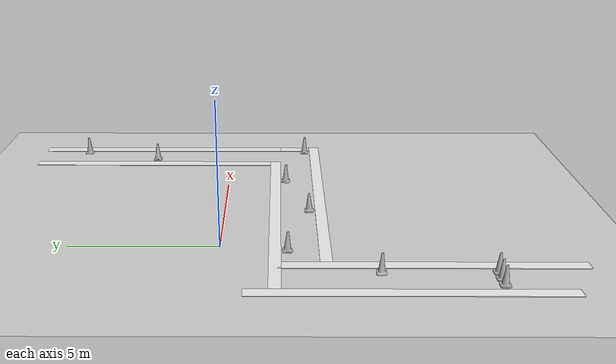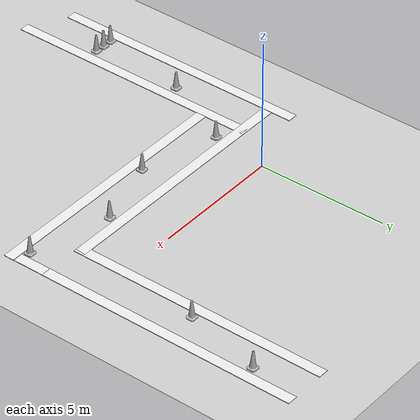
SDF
<sdf version="1.6">
 <world name="default">
  <light name="sun" type="directional">
   <pose>0 0 10 0 -0 0</pose>
   <diffuse>0.8 0.8 0.8 1</diffuse>
   <specular>0.2 0.2 0.2 1</specular>
   <attenuation>
    <range>1000</range>
    <constant>0.9</constant>
    <linear>0.01</linear>
    <quadratic>0.001</quadratic>
   </attenuation>
   <direction>-0.5 0.1 -0.9</direction>
  </light>
  <model name="ground_plane">
   <static>1</static>
   <link name="link">
    <collision name="collision">
     <geometry><plane><normal>0 0 1</normal><size>100 100</size></plane></geometry>
     <surface>
      <contact><collide_bitmask>65535</collide_bitmask></contact>
      <friction><ode><mu>100</mu><mu2>50</mu2></ode></friction>
     </surface>
    </collision>
    <visual name="visual">
     <cast_shadows>0</cast_shadows>
     <geometry><plane><normal>0 0 1</normal><size>100 100</size></plane></geometry>
     <material>
      <script><uri>file://media/materials/scripts/gazebo.material</uri><name>Gazebo/Grey</name></script>
     </material>
    </visual>
   </link>
  </model>
  <gravity>0 0 -9.8</gravity>
  <magnetic_field>6e-06 2.3e-05 -4.2e-05</magnetic_field>
  <atmosphere type="adiabatic"/>
  <physics name="default_physics" default="0" type="ode">
   <max_step_size>0.001</max_step_size>
   <real_time_factor>1</real_time_factor>
   <real_time_update_rate>1000</real_time_update_rate>
  </physics>
  <scene><ambient>0.4 0.4 0.4 1</ambient><background>0.7 0.7 0.7 1</background><shadows>1</shadows></scene>
  <audio><device>default</device></audio>
  <spherical_coordinates>
   <surface_model>EARTH_WGS84</surface_model>
   <latitude_deg>0</latitude_deg>
   <longitude_deg>0</longitude_deg>
   <elevation>0</elevation>
   <heading_deg>0</heading_deg>
  </spherical_coordinates>
  <model name="Block">
   <link name="link_0">
    <inertial>
     <mass>0.0615681</mass>
     <inertia>
      <ixx>0.188626</ixx>
      <ixy>0</ixy>
      <ixz>0</ixz>
      <iyy>0.000710781</iyy>
      <iyz>0</iyz>
      <izz>0.189329</izz>
     </inertia>
    </inertial>
    <visual name="visual">
     <geometry><box><size>0.4 10 0.02</size></box></geometry>
     <material>
      <lighting>1</lighting>
      <script><uri>file://media/materials/scripts/gazebo.material</uri><name>Gazebo/White</name></script>
     </material>
    </visual>
    <collision name="collision">
     <geometry><box><size>0.4 10 0.02</size></box></geometry>
     <surface>
      <friction>
       <ode><mu>1</mu><mu2>1</mu2><fdir1>0 0 0</fdir1><slip1>0</slip1><slip2>0</slip2></ode>
       <torsional>
        <coefficient>1</coefficient>
        <patch_radius>0</patch_radius>
        <surface_radius>0</surface_radius>
        <use_patch_radius>1</use_patch_radius>
        <ode><slip>0</slip></ode>
       </torsional>
      </friction>
      <bounce><restitution_coefficient>0</restitution_coefficient><threshold>1e+06</threshold></bounce>
      <contact>
       <collide_without_contact>0</collide_without_contact>
       <collide_without_contact_bitmask>1</collide_without_contact_bitmask>
       <collide_bitmask>1</collide_bitmask>
       <ode>
        <soft_cfm>0</soft_cfm>
        <soft_erp>0.2</soft_erp>
        <kp>1e+13</kp>
        <kd>1</kd>
        <max_vel>0.01</max_vel>
        <min_depth>0</min_depth>
       </ode>
       <bullet>
        <split_impulse>1</split_impulse>
        <split_impulse_penetration_threshold>-0.01</split_impulse_penetration_threshold>
        <soft_cfm>0</soft_cfm>
        <soft_erp>0.2</soft_erp>
        <kp>1e+13</kp>
        <kd>1</kd>
       </bullet>
      </contact>
     </surface>
    </collision>
   </link>
   <static>1</static>
   <pose>8.78781 3.0031 0 0 -0 0</pose>
  </model>
  <model name="Block_0">
   <link name="link_0">
    <inertial>
     <mass>0.0615681</mass>
     <inertia>
      <ixx>0.188626</ixx>
      <ixy>0</ixy>
      <ixz>0</ixz>
      <iyy>0.000710781</iyy>
      <iyz>0</iyz>
      <izz>0.189329</izz>
     </inertia>
    </inertial>
    <visual name="visual">
     <geometry><box><size>0.4 10 0.02</size></box></geometry>
     <material>
      <lighting>1</lighting>
      <script><uri>file://media/materials/scripts/gazebo.material</uri><name>Gazebo/White</name></script>
     </material>
    </visual>
    <collision name="collision">
     <geometry><box><size>0.4 10 0.02</size></box></geometry>
     <surface>
      <friction>
       <ode><mu>1</mu><mu2>1</mu2><fdir1>0 0 0</fdir1><slip1>0</slip1><slip2>0</slip2></ode>
       <torsional>
        <coefficient>1</coefficient>
        <patch_radius>0</patch_radius>
        <surface_radius>0</surface_radius>
        <use_patch_radius>1</use_patch_radius>
        <ode><slip>0</slip></ode>
       </torsional>
      </friction>
      <bounce><restitution_coefficient>0</restitution_coefficient><threshold>1e+06</threshold></bounce>
      <contact>
       <collide_without_contact>0</collide_without_contact>
       <collide_without_contact_bitmask>1</collide_without_contact_bitmask>
       <collide_bitmask>1</collide_bitmask>
       <ode>
        <soft_cfm>0</soft_cfm>
        <soft_erp>0.2</soft_erp>
        <kp>1e+13</kp>
        <kd>1</kd>
        <max_vel>0.01</max_vel>
        <min_depth>0</min_depth>
       </ode>
       <bullet>
        <split_impulse>1</split_impulse>
        <split_impulse_penetration_threshold>-0.01</split_impulse_penetration_threshold>
        <soft_cfm>0</soft_cfm>
        <soft_erp>0.2</soft_erp>
        <kp>1e+13</kp>
        <kd>1</kd>
       </bullet>
      </contact>
     </surface>
    </collision>
   </link>
   <static>1</static>
   <pose>7.2087 3.0031 0 0 -0 0</pose>
  </model>
  <model name="Block_1">
   <link name="link_0">
    <inertial>
     <mass>0.0615681</mass>
     <inertia>
      <ixx>0.188626</ixx>
      <ixy>0</ixy>
      <ixz>0</ixz>
      <iyy>0.000710781</iyy>
      <iyz>0</iyz>
      <izz>0.189329</izz>
     </inertia>
    </inertial>
    <visual name="visual">
     <geometry><box><size>0.4 1.2 0.02</size></box></geometry>
     <material>
      <lighting>1</lighting>
      <script><uri>file://media/materials/scripts/gazebo.material</uri><name>Gazebo/White</name></script>
     </material>
    </visual>
    <collision name="collision">
     <geometry><box><size>0.4 1.2 0.02</size></box></geometry>
     <surface>
      <friction>
       <ode><mu>1</mu><mu2>1</mu2><fdir1>0 0 0</fdir1><slip1>0</slip1><slip2>0</slip2></ode>
       <torsional>
        <coefficient>1</coefficient>
        <patch_radius>0</patch_radius>
        <surface_radius>0</surface_radius>
        <use_patch_radius>1</use_patch_radius>
        <ode><slip>0</slip></ode>
       </torsional>
      </friction>
      <bounce><restitution_coefficient>0</restitution_coefficient><threshold>1e+06</threshold></bounce>
      <contact>
       <collide_without_contact>0</collide_without_contact>
       <collide_without_contact_bitmask>1</collide_without_contact_bitmask>
       <collide_bitmask>1</collide_bitmask>
       <ode>
        <soft_cfm>0</soft_cfm>
        <soft_erp>0.2</soft_erp>
        <kp>1e+13</kp>
        <kd>1</kd>
        <max_vel>0.01</max_vel>
        <min_depth>0</min_depth>
       </ode>
       <bullet>
        <split_impulse>1</split_impulse>
        <split_impulse_penetration_threshold>-0.01</split_impulse_penetration_threshold>
        <soft_cfm>0</soft_cfm>
        <soft_erp>0.2</soft_erp>
        <kp>1e+13</kp>
        <kd>1</kd>
       </bullet>
      </contact>
     </surface>
    </collision>
   </link>
   <static>1</static>
   <pose>8.78781 -2.60387 0 0 -0 0</pose>
  </model>
  <model name="Block_2">
   <link name="link_0">
    <inertial>
     <mass>0.0615681</mass>
     <inertia>
      <ixx>0.188626</ixx>
      <ixy>0</ixy>
      <ixz>0</ixz>
      <iyy>0.000710781</iyy>
      <iyz>0</iyz>
      <izz>0.189329</izz>
     </inertia>
    </inertial>
    <visual name="visual">
     <geometry><box><size>10 0.4 0.02</size></box></geometry>
     <material>
      <lighting>1</lighting>
      <script><uri>file://media/materials/scripts/gazebo.material</uri><name>Gazebo/White</name></script>
     </material>
    </visual>
    <collision name="collision">
     <geometry><box><size>10 0.4 0.02</size></box></geometry>
     <surface>
      <friction>
       <ode><mu>1</mu><mu2>1</mu2><fdir1>0 0 0</fdir1><slip1>0</slip1><slip2>0</slip2></ode>
       <torsional>
        <coefficient>1</coefficient>
        <patch_radius>0</patch_radius>
        <surface_radius>0</surface_radius>
        <use_patch_radius>1</use_patch_radius>
        <ode><slip>0</slip></ode>
       </torsional>
      </friction>
      <bounce><restitution_coefficient>0</restitution_coefficient><threshold>1e+06</threshold></bounce>
      <contact>
       <collide_without_contact>0</collide_without_contact>
       <collide_without_contact_bitmask>1</collide_without_contact_bitmask>
       <collide_bitmask>1</collide_bitmask>
       <ode>
        <soft_cfm>0</soft_cfm>
        <soft_erp>0.2</soft_erp>
        <kp>1e+13</kp>
        <kd>1</kd>
        <max_vel>0.01</max_vel>
        <min_depth>0</min_depth>
       </ode>
       <bullet>
        <split_impulse>1</split_impulse>
        <split_impulse_penetration_threshold>-0.01</split_impulse_penetration_threshold>
        <soft_cfm>0</soft_cfm>
        <soft_erp>0.2</soft_erp>
        <kp>1e+13</kp>
        <kd>1</kd>
       </bullet>
      </contact>
     </surface>
    </collision>
   </link>
   <static>1</static>
   <pose>3.99476 -3.42014 0 0 -0 0</pose>
  </model>
  <model name="Block_3">
   <link name="link_0">
    <inertial>
     <mass>0.0615681</mass>
     <inertia>
      <ixx>0.188626</ixx>
      <ixy>0</ixy>
      <ixz>0</ixz>
      <iyy>0.000710781</iyy>
      <iyz>0</iyz>
      <izz>0.189329</izz>
     </inertia>
    </inertial>
    <visual name="visual">
     <geometry><box><size>10 0.4 0.02</size></box></geometry>
     <material>
      <lighting>1</lighting>
      <script><uri>file://media/materials/scripts/gazebo.material</uri><name>Gazebo/White</name></script>
     </material>
    </visual>
    <collision name="collision">
     <geometry><box><size>10 0.4 0.02</size></box></geometry>
     <surface>
      <friction>
       <ode><mu>1</mu><mu2>1</mu2><fdir1>0 0 0</fdir1><slip1>0</slip1><slip2>0</slip2></ode>
       <torsional>
        <coefficient>1</coefficient>
        <patch_radius>0</patch_radius>
        <surface_radius>0</surface_radius>
        <use_patch_radius>1</use_patch_radius>
        <ode><slip>0</slip></ode>
       </torsional>
      </friction>
      <bounce><restitution_coefficient>0</restitution_coefficient><threshold>1e+06</threshold></bounce>
      <contact>
       <collide_without_contact>0</collide_without_contact>
       <collide_without_contact_bitmask>1</collide_without_contact_bitmask>
       <collide_bitmask>1</collide_bitmask>
       <ode>
        <soft_cfm>0</soft_cfm>
        <soft_erp>0.2</soft_erp>
        <kp>1e+13</kp>
        <kd>1</kd>
        <max_vel>0.01</max_vel>
        <min_depth>0</min_depth>
       </ode>
       <bullet>
        <split_impulse>1</split_impulse>
        <split_impulse_penetration_threshold>-0.01</split_impulse_penetration_threshold>
        <soft_cfm>0</soft_cfm>
        <soft_erp>0.2</soft_erp>
        <kp>1e+13</kp>
        <kd>1</kd>
       </bullet>
      </contact>
     </surface>
    </collision>
   </link>
   <static>1</static>
   <pose>2.40227 -1.78924 0 0 -0 0</pose>
  </model>
  <model name="Block_4">
   <link name="link_0">
    <inertial>
     <mass>0.0615681</mass>
     <inertia>
      <ixx>0.188626</ixx>
      <ixy>0</ixy>
      <ixz>0</ixz>
      <iyy>0.000710781</iyy>
      <iyz>0</iyz>
      <izz>0.189329</izz>
     </inertia>
    </inertial>
    <visual name="visual">
     <geometry><box><size>0.4 10 0.02</size></box></geometry>
     <material>
      <lighting>1</lighting>
      <script><uri>file://media/materials/scripts/gazebo.material</uri><name>Gazebo/White</name></script>
     </material>
    </visual>
    <collision name="collision">
     <geometry><box><size>0.4 10 0.02</size></box></geometry>
     <surface>
      <friction>
       <ode><mu>1</mu><mu2>1</mu2><fdir1>0 0 0</fdir1><slip1>0</slip1><slip2>0</slip2></ode>
       <torsional>
        <coefficient>1</coefficient>
        <patch_radius>0</patch_radius>
        <surface_radius>0</surface_radius>
        <use_patch_radius>1</use_patch_radius>
        <ode><slip>0</slip></ode>
       </torsional>
      </friction>
      <bounce><restitution_coefficient>0</restitution_coefficient><threshold>1e+06</threshold></bounce>
      <contact>
       <collide_without_contact>0</collide_without_contact>
       <collide_without_contact_bitmask>1</collide_without_contact_bitmask>
       <collide_bitmask>1</collide_bitmask>
       <ode>
        <soft_cfm>0</soft_cfm>
        <soft_erp>0.2</soft_erp>
        <kp>1e+13</kp>
        <kd>1</kd>
        <max_vel>0.01</max_vel>
        <min_depth>0</min_depth>
       </ode>
       <bullet>
        <split_impulse>1</split_impulse>
        <split_impulse_penetration_threshold>-0.01</split_impulse_penetration_threshold>
        <soft_cfm>0</soft_cfm>
        <soft_erp>0.2</soft_erp>
        <kp>1e+13</kp>
        <kd>1</kd>
       </bullet>
      </contact>
     </surface>
    </collision>
   </link>
   <static>1</static>
   <pose>-2.81326 -5.83485 0 0 -0 0</pose>
  </model>
  <model name="Block_5">
   <link name="link_0">
    <inertial>
     <mass>0.0615681</mass>
     <inertia>
      <ixx>0.188626</ixx>
      <ixy>0</ixy>
      <ixz>0</ixz>
      <iyy>0.000710781</iyy>
      <iyz>0</iyz>
      <izz>0.189329</izz>
     </inertia>
    </inertial>
    <visual name="visual">
     <geometry><box><size>0.4 9.99999 0.02</size></box></geometry>
     <material>
      <lighting>1</lighting>
      <script><uri>file://media/materials/scripts/gazebo.material</uri><name>Gazebo/White</name></script>
     </material>
    </visual>
    <collision name="collision">
     <geometry><box><size>0.4 9.99999 0.02</size></box></geometry>
     <surface>
      <friction>
       <ode><mu>1</mu><mu2>1</mu2><fdir1>0 0 0</fdir1><slip1>0</slip1><slip2>0</slip2></ode>
       <torsional>
        <coefficient>1</coefficient>
        <patch_radius>0</patch_radius>
        <surface_radius>0</surface_radius>
        <use_patch_radius>1</use_patch_radius>
        <ode><slip>0</slip></ode>
       </torsional>
      </friction>
      <bounce><restitution_coefficient>0</restitution_coefficient><threshold>1e+06</threshold></bounce>
      <contact>
       <collide_without_contact>0</collide_without_contact>
       <collide_without_contact_bitmask>1</collide_without_contact_bitmask>
       <collide_bitmask>1</collide_bitmask>
       <ode>
        <soft_cfm>0</soft_cfm>
        <soft_erp>0.2</soft_erp>
        <kp>1e+13</kp>
        <kd>1</kd>
        <max_vel>0.01</max_vel>
        <min_depth>0</min_depth>
       </ode>
       <bullet>
        <split_impulse>1</split_impulse>
        <split_impulse_penetration_threshold>-0.01</split_impulse_penetration_threshold>
        <soft_cfm>0</soft_cfm>
        <soft_erp>0.2</soft_erp>
        <kp>1e+13</kp>
        <kd>1</kd>
       </bullet>
      </contact>
     </surface>
    </collision>
   </link>
   <static>1</static>
   <pose>-1.19954 -6.65266 0 0 -0 0</pose>
  </model>
  <model name="cone">
   <model name="Construction Cone">
    <link name="link">
     <collision name="collision">
      <geometry>
       <mesh><scale>10 10 10</scale><uri>model://construction_cone/meshes/construction_cone.dae</uri></mesh>
      </geometry>
     </collision>
     <visual name="visual">
      <geometry>
       <mesh><scale>6.4 6.4 6.4</scale><uri>model://construction_cone/meshes/construction_cone.dae</uri></mesh>
      </geometry>
     </visual>
     <inertial>
      <inertia><ixx>1</ixx><ixy>0</ixy><ixz>0</ixz><iyy>1</iyy><iyz>0</iyz><izz>1</izz></inertia>
      <mass>1</mass>
     </inertial>
    </link>
    <pose>1e-06 -3e-06 0 0 -0 0</pose>
   </model>
   <static>1</static>
   <pose>8.37557 6.12846 0.005413 -0 -0.021564 2e-05</pose>
  </model>
  <model name="cone_0">
   <model name="Construction Cone">
    <link name="link">
     <collision name="collision">
      <geometry>
       <mesh><scale>10 10 10</scale><uri>model://construction_cone/meshes/construction_cone.dae</uri></mesh>
      </geometry>
     </collision>
     <visual name="visual">
      <geometry>
       <mesh><scale>6.4 6.4 6.4</scale><uri>model://construction_cone/meshes/construction_cone.dae</uri></mesh>
      </geometry>
     </visual>
     <inertial>
      <inertia><ixx>1</ixx><ixy>0</ixy><ixz>0</ixz><iyy>1</iyy><iyz>0</iyz><izz>1</izz></inertia>
      <mass>1</mass>
     </inertial>
    </link>
    <pose>1e-06 -3e-06 0 0 -0 0</pose>
   </model>
   <static>1</static>
   <pose>7.63831 3.11675 0.005227 0 0.020787 5.4e-05</pose>
  </model>
  <model name="cone_1">
   <model name="Construction Cone">
    <link name="link">
     <collision name="collision">
      <geometry>
       <mesh><scale>10 10 10</scale><uri>model://construction_cone/meshes/construction_cone.dae</uri></mesh>
      </geometry>
     </collision>
     <visual name="visual">
      <geometry>
       <mesh><scale>6.4 6.4 6.4</scale><uri>model://construction_cone/meshes/construction_cone.dae</uri></mesh>
      </geometry>
     </visual>
     <inertial>
      <inertia><ixx>1</ixx><ixy>0</ixy><ixz>0</ixz><iyy>1</iyy><iyz>0</iyz><izz>1</izz></inertia>
      <mass>1</mass>
     </inertial>
    </link>
    <pose>1e-06 -3e-06 0 0 -0 0</pose>
   </model>
   <static>1</static>
   <pose>8.40286 -3.0124 0.009991 -1e-06 -2e-06 4e-06</pose>
  </model>
  <model name="cone_2">
   <model name="Construction Cone">
    <link name="link">
     <collision name="collision">
      <geometry>
       <mesh><scale>10 10 10</scale><uri>model://construction_cone/meshes/construction_cone.dae</uri></mesh>
      </geometry>
     </collision>
     <visual name="visual">
      <geometry>
       <mesh><scale>6.4 6.4 6.4</scale><uri>model://construction_cone/meshes/construction_cone.dae</uri></mesh>
      </geometry>
     </visual>
     <inertial>
      <inertia><ixx>1</ixx><ixy>0</ixy><ixz>0</ixz><iyy>1</iyy><iyz>0</iyz><izz>1</izz></inertia>
      <mass>1</mass>
     </inertial>
    </link>
    <pose>1e-06 -3e-06 0 0 -0 0</pose>
   </model>
   <static>1</static>
   <pose>5.35558 -2.18622 0.005606 0.022302 0 -7e-06</pose>
  </model>
  <model name="cone_3">
   <model name="Construction Cone">
    <link name="link">
     <collision name="collision">
      <geometry>
       <mesh><scale>10 10 10</scale><uri>model://construction_cone/meshes/construction_cone.dae</uri></mesh>
      </geometry>
     </collision>
     <visual name="visual">
      <geometry>
       <mesh><scale>6.4 6.4 6.4</scale><uri>model://construction_cone/meshes/construction_cone.dae</uri></mesh>
      </geometry>
     </visual>
     <inertial>
      <inertia><ixx>1</ixx><ixy>0</ixy><ixz>0</ixz><iyy>1</iyy><iyz>0</iyz><izz>1</izz></inertia>
      <mass>1</mass>
     </inertial>
    </link>
    <pose>1e-06 -3e-06 0 0 -0 0</pose>
   </model>
   <static>1</static>
   <pose>2.68911 -3.01028 0.00545 -0.021678 -0 3e-06</pose>
  </model>
  <model name="cone_4">
   <model name="Construction Cone">
    <link name="link">
     <collision name="collision">
      <geometry>
       <mesh><scale>10 10 10</scale><uri>model://construction_cone/meshes/construction_cone.dae</uri></mesh>
      </geometry>
     </collision>
     <visual name="visual">
      <geometry>
       <mesh><scale>6.4 6.4 6.4</scale><uri>model://construction_cone/meshes/construction_cone.dae</uri></mesh>
      </geometry>
     </visual>
     <inertial>
      <inertia><ixx>1</ixx><ixy>0</ixy><ixz>0</ixz><iyy>1</iyy><iyz>0</iyz><izz>1</izz></inertia>
      <mass>1</mass>
     </inertial>
    </link>
    <pose>1e-06 -3e-06 0 0 -0 0</pose>
   </model>
   <static>1</static>
   <pose>-0.29358 -2.19813 0.005462 0.021721 -0 -5e-06</pose>
  </model>
  <model name="cone_5">
   <model name="Construction Cone">
    <link name="link">
     <collision name="collision">
      <geometry>
       <mesh><scale>10 10 10</scale><uri>model://construction_cone/meshes/construction_cone.dae</uri></mesh>
      </geometry>
     </collision>
     <visual name="visual">
      <geometry>
       <mesh><scale>6.4 6.4 6.4</scale><uri>model://construction_cone/meshes/construction_cone.dae</uri></mesh>
      </geometry>
     </visual>
     <inertial>
      <inertia><ixx>1</ixx><ixy>0</ixy><ixz>0</ixz><iyy>1</iyy><iyz>0</iyz><izz>1</izz></inertia>
      <mass>1</mass>
     </inertial>
    </link>
    <pose>1e-06 -3e-06 0 0 -0 0</pose>
   </model>
   <static>1</static>
   <pose>-1.67956 -5.06783 -0 0 -1e-06 0</pose>
  </model>
  <model name="cone_6">
   <model name="Construction Cone">
    <link name="link">
     <collision name="collision">
      <geometry>
       <mesh><scale>10 10 10</scale><uri>model://construction_cone/meshes/construction_cone.dae</uri></mesh>
      </geometry>
     </collision>
     <visual name="visual">
      <geometry>
       <mesh><scale>6.4 6.4 6.4</scale><uri>model://construction_cone/meshes/construction_cone.dae</uri></mesh>
      </geometry>
     </visual>
     <inertial>
      <inertia><ixx>1</ixx><ixy>0</ixy><ixz>0</ixz><iyy>1</iyy><iyz>0</iyz><izz>1</izz></inertia>
      <mass>1</mass>
     </inertial>
    </link>
    <pose>1e-06 -3e-06 0 0 -0 0</pose>
   </model>
   <static>1</static>
   <pose>-1.6529 -8.66602 -0 0 -1e-06 0</pose>
  </model>
  <model name="cone_7">
   <model name="Construction Cone">
    <link name="link">
     <collision name="collision">
      <geometry>
       <mesh><scale>10 10 10</scale><uri>model://construction_cone/meshes/construction_cone.dae</uri></mesh>
      </geometry>
     </collision>
     <visual name="visual">
      <geometry>
       <mesh><scale>6.4 6.4 6.4</scale><uri>model://construction_cone/meshes/construction_cone.dae</uri></mesh>
      </geometry>
     </visual>
     <inertial>
      <inertia><ixx>1</ixx><ixy>0</ixy><ixz>0</ixz><iyy>1</iyy><iyz>0</iyz><izz>1</izz></inertia>
      <mass>1</mass>
     </inertial>
    </link>
    <pose>1e-06 -3e-06 0 0 -0 0</pose>
   </model>
   <static>1</static>
   <pose>-2.03494 -8.65719 -0 0 -1e-06 0</pose>
  </model>
  <model name="cone_8">
   <model name="Construction Cone">
    <link name="link">
     <collision name="collision">
      <geometry>
       <mesh><scale>10 10 10</scale><uri>model://construction_cone/meshes/construction_cone.dae</uri></mesh>
      </geometry>
     </collision>
     <visual name="visual">
      <geometry>
       <mesh><scale>6.4 6.4 6.4</scale><uri>model://construction_cone/meshes/construction_cone.dae</uri></mesh>
      </geometry>
     </visual>
     <inertial>
      <inertia><ixx>1</ixx><ixy>0</ixy><ixz>0</ixz><iyy>1</iyy><iyz>0</iyz><izz>1</izz></inertia>
      <mass>1</mass>
     </inertial>
    </link>
    <pose>1e-06 -3e-06 0 0 -0 0</pose>
   </model>
   <static>1</static>
   <pose>-2.41688 -8.65719 0.005614 0 0.022329 5e-06</pose>
  </model>
 </world>
</sdf>
